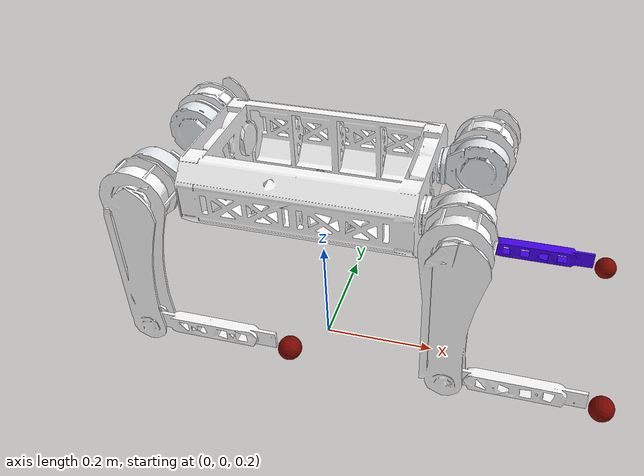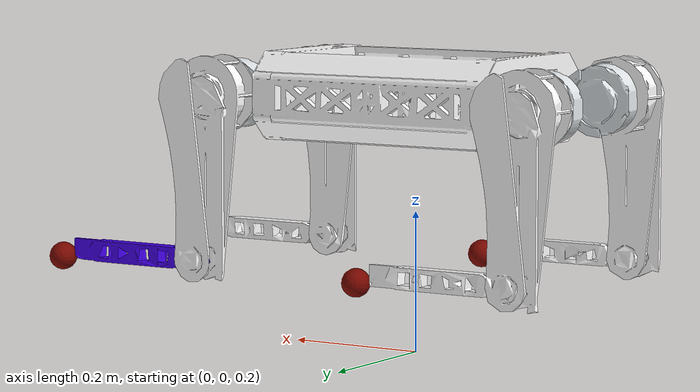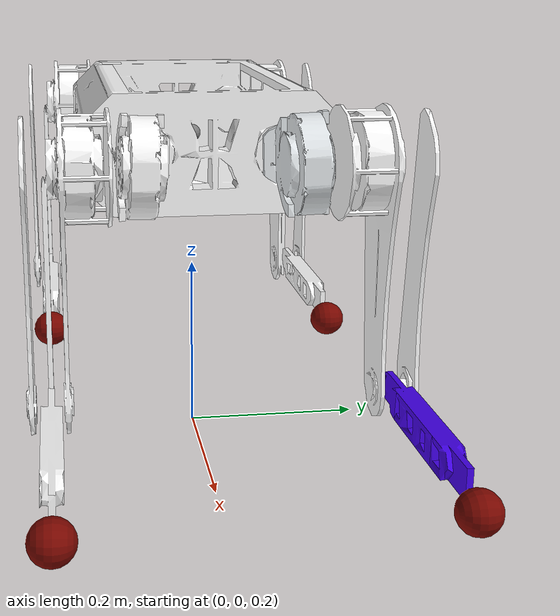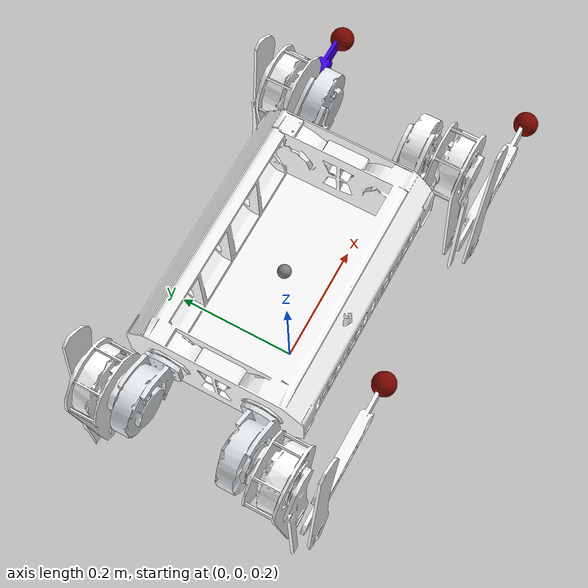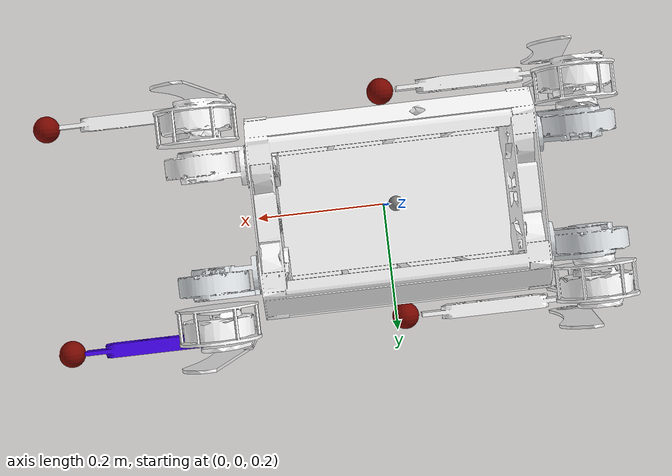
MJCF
<mujoco model="dog">
  <compiler angle="radian"/>

  <asset>
    <mesh name="body_link" file="body_link.stl"/>
    <mesh name="lf_link1" file="lf_link1.stl"/>
    <mesh name="lf_link2" file="lf_link2.stl"/>
    <mesh name="lf_link3" file="lf_link3.stl"/>
    <mesh name="lf_link4" file="lf_link4.stl"/>
    <mesh name="rf_link1" file="rf_link1.stl"/>
    <mesh name="rf_link2" file="rf_link2.stl"/>
    <mesh name="rf_link3" file="rf_link3.stl"/>
    <mesh name="rf_link4" file="rf_link4.stl"/>
    <mesh name="lb_link1" file="lb_link1.stl"/>
    <mesh name="lb_link2" file="lb_link2.stl"/>
    <mesh name="lb_link3" file="lb_link3.stl"/>
    <mesh name="lb_link4" file="lb_link4.stl"/>
    <mesh name="rb_link1" file="rb_link1.stl"/>
    <mesh name="rb_link2" file="rb_link2.stl"/>
    <mesh name="rb_link3" file="rb_link3.stl"/>
    <mesh name="rb_link4" file="rb_link4.stl"/>
  </asset>

  <contact>
        <exclude body1="base" body2="lf_link1" />
        <exclude body1="base" body2="lf_link2" />
        <exclude body1="lf_link1" body2="lf_link2" />
        <exclude body1="lf_link2" body2="lf_link3" />
        <exclude body1="base" body2="rf_link1" />
        <exclude body1="base" body2="rf_link2" />
        <exclude body1="rf_link1" body2="rf_link2" />
        <exclude body1="rf_link2" body2="rf_link3" />
    </contact>

  <worldbody>
    <!-- Main body link with mass and inertia -->
    <body name="base" pos="0 0 0.5">
      <freejoint/>
      <inertial pos="6.3455e-05 0.0025357 0.056203" quat="0.999996 -0.000182 0.00272 -5.07e-05" mass="4.2135" diaginertia="0.011761 0.010952 0.0060638"/>
      <geom type="mesh" rgba="1 1 1 1" mesh="body_link"/>
      <site name="imu_main_site" pos="0 0 0.056203" size="0.01"/>

      <body name="lf_link1" pos="0.1916 0.069987 0.061999" quat="0.707105 0 0.707108 0">
      <inertial pos="0.000574214 0.00884611 0.0444225" quat="0.521191 0.460379 0.475622 0.538697" mass="0.305259" diaginertia="0.000294539 0.000186896 0.000135452"/>
      <joint name="lf_joint1" pos="0 0 0" axis="0 0 1" range="-3 3" actuatorfrcrange="-20 20"/>
      <geom type="mesh" rgba="0.898039 0.917647 0.929412 1" mesh="lf_link1"/>
      <body name="lf_link2" pos="-0.000957 0.029298 0.060013" quat="0.707105 -0.707108 0 0">
        <inertial pos="0.0668406 -0.00037093 0.0525635" quat="-0.0206424 0.706818 0.0207042 0.706791" mass="0.644661" diaginertia="0.00225868 0.00198331 0.000301352"/>
        <joint name="lf_joint2" pos="0 0 0" axis="0 0 1" range="-3 3" actuatorfrcrange="-20 20"/>
        <geom type="mesh" rgba="1 1 1 1" mesh="lf_link2"/>
        <body name="lf_link3" pos="0.23001 0 0.0935" quat="0.707105 0 0 -0.707108">
          <inertial pos="0.0647099 -0.0060203 0.0816978" quat="0.691885 -0.127346 -0.165799 0.691078" mass="0.198135" diaginertia="0.00437451 0.003995 0.00042604"/>
          <joint name="lf_joint3" pos="0 0 0" axis="0 0 1" range="-3 3" actuatorfrcrange="-20 20"/>
          <geom type="mesh" rgba="0.266667 0 0.933333 1" mesh="lf_link3"/>
          <geom pos="0.243132 0.012189 -0.0235007" quat="0 0 0 -1" type="sphere" rgba="0.482353 0.027451 0 1" size="0.02" friction="1.2 0.01 0.0001"/>
        </body>
      </body>
    </body>
    <body name="rf_link1" pos="0.1916 -0.070013 0.061999" quat="0.707105 0 0.707108 0">
      <inertial pos="-0.00109457 -0.00876291 0.044547" quat="0.476235 0.539457 0.520405 0.459745" mass="0.305259" diaginertia="0.000294539 0.000186896 0.000135452"/>
      <joint name="rf_joint1" pos="0 0 0" axis="0 0 1" range="-3 3" actuatorfrcrange="-20 20"/>
      <geom type="mesh" rgba="1 1 1 1" mesh="rf_link1"/>
      <body name="rf_link2" pos="-0.0010387 -0.029268 0.059987" quat="0.707105 0.707108 0 0">
        <inertial pos="0.0658456 0.000279501 0.0526643" quat="0.0208579 0.706816 -0.0207629 0.706785" mass="0.653396" diaginertia="0.00226248 0.00198515 0.000303326"/>
        <joint name="rf_joint2" pos="0 0 0" axis="0 0 1" range="-3 3" actuatorfrcrange="-20 20"/>
        <geom type="mesh" rgba="1 1 1 1" mesh="rf_link2"/>
        <body name="rf_link3" pos="0.22999 1.0169e-05 0.0935" quat="0.707105 0 0 0.707108">
          <inertial pos="0.0467607 -0.00175159 0.0815497" quat="0.676226 -0.193626 -0.19761 0.682773" mass="0.198135" diaginertia="0.00490176 0.00457448 0.000373869"/>
          <joint name="rf_joint3" pos="0 0 0" axis="0 0 1" range="-3 3" actuatorfrcrange="-20 20"/>
          <geom type="mesh" rgba="1 1 1 1" mesh="rf_link3"/>
          <geom pos="0.24313 -0.013026 -0.023046" quat="0.0179954 0.999838 0 0" type="sphere" rgba="0.482353 0.027451 0 1" size="0.02" friction="1.2 0.01 0.0001"/>
        </body>
      </body>
    </body>
    <body name="lb_link1" pos="-0.1916 0.070013 0.061999" quat="-2.59734e-06 0.707105 -2.59735e-06 -0.707108">
      <inertial pos="-0.000761616 -0.00879802 0.044547" quat="0.467448 0.52951 0.530523 0.468677" mass="0.305259" diaginertia="0.000294539 0.000186896 0.000135452"/>
      <joint name="lb_joint1" pos="0 0 0" axis="0 0 1" range="-3 3" actuatorfrcrange="-20 20"/>
      <geom type="mesh" rgba="0.898039 0.917647 0.929412 1" mesh="lb_link1"/>
      <body name="lb_link2" pos="7.0296e-05 -0.029287 0.059987" quat="0.707105 0.707108 0 0">
        <inertial pos="0.0641255 -0.000392291 0.0504984" quat="-0.0207255 0.70681 0.0206398 0.706798" mass="0.673604" diaginertia="0.00227128 0.00198992 0.000307448"/>
        <joint name="lb_joint2" pos="0 0 0" axis="0 0 1" range="-3 3" actuatorfrcrange="-20 20"/>
        <geom type="mesh" rgba="1 1 1 1" mesh="lb_link2"/>
        <body name="lb_link3" pos="0.23001 0 0.0935" quat="0.707105 0 0 -0.707108">
          <inertial pos="0.050693 -0.0103779 0.0815839" quat="0.68722 -0.151926 -0.217761 0.676186" mass="0.198135" diaginertia="0.00480061 0.00446106 0.000385922"/>
          <joint name="lb_joint3" pos="0 0 0" axis="0 0 1" range="-3 3" actuatorfrcrange="-20 20"/>
          <geom type="mesh" rgba="1 1 1 1" mesh="lb_link3"/>
          <geom pos="0.24313 0.012189 -0.023501" quat="1 0 0 0" type="sphere" rgba="0.482353 0.027451 0 1" size="0.02" friction="1.2 0.01 0.0001"/>
        </body>
      </body>
    </body>
    <body name="rb_link1" pos="-0.1916 -0.07 0.062" quat="-2.59734e-06 0.707105 -2.59735e-06 -0.707108">
      <inertial pos="0.000187256 0.00884962 0.0444224" quat="0.50925 0.449836 0.485606 0.55" mass="0.305259" diaginertia="0.000294539 0.000186896 0.000135452"/>
      <joint name="rb_joint1" pos="0 0 0" axis="0 0 1" range="-3 3" actuatorfrcrange="-20 20"/>
      <geom type="mesh" rgba="0.898039 0.917647 0.929412 1" mesh="rb_link1"/>
      <body name="rb_link2" pos="-0.0022402 0.029214 0.06" quat="0.707105 -0.707108 0 0">
        <inertial pos="0.0629593 0.000213694 0.0506213" quat="0.0208318 0.706817 -0.0207387 0.706786" mass="0.682339" diaginertia="0.00227508 0.00199134 0.000309842"/>
        <joint name="rb_joint2" pos="0 0 0" axis="0 0 1" range="-3 3" actuatorfrcrange="-20 20"/>
        <geom type="mesh" rgba="1 1 1 1" mesh="rb_link2"/>
        <body name="rb_link3" pos="0.23 0 0.0935" quat="0.707105 0 0 0.707108">
          <inertial pos="0.0525255 0.0105005 0.0817597" quat="0.677595 -0.213205 -0.14646 0.688447" mass="0.198135" diaginertia="0.00475205 0.00440702 0.000391369"/>
          <joint name="rb_joint3" pos="0 0 0" axis="0 0 1" range="-3 3" actuatorfrcrange="-20 20"/>
          <geom type="mesh" rgba="1 1 1 1" mesh="rb_link3" />
          <geom pos="0.24313 -0.012189 -0.023499" quat="1 0 0 0" type="sphere" rgba="0.482353 0.027451 0 1" size="0.02" friction="1.2 0.01 0.0001"/>
        </body>
      </body>
    </body>
    </body>
  </worldbody>

  <actuator>
        <!-- Left Front -->
        <motor name="lf_motor1" joint="lf_joint1" gear="1" ctrllimited="true" ctrlrange="-20 20" />
        <motor name="lf_motor2" joint="lf_joint2" gear="1" ctrllimited="true" ctrlrange="-20 20" />
        <motor name="lf_motor3" joint="lf_joint3" gear="1" ctrllimited="true" ctrlrange="-20 20" />

        <!-- Right Front -->
        <motor name="rf_motor1" joint="rf_joint1" gear="1" ctrllimited="true" ctrlrange="-20 20" />
        <motor name="rf_motor2" joint="rf_joint2" gear="1" ctrllimited="true" ctrlrange="-20 20" />
        <motor name="rf_motor3" joint="rf_joint3" gear="1" ctrllimited="true" ctrlrange="-20 20" />

        <!-- Left Back -->
        <motor name="lb_motor1" joint="lb_joint1" gear="1" ctrllimited="true" ctrlrange="-20 20" />
        <motor name="lb_motor2" joint="lb_joint2" gear="1" ctrllimited="true" ctrlrange="-20 20" />
        <motor name="lb_motor3" joint="lb_joint3" gear="1" ctrllimited="true" ctrlrange="-20 20" />

        <!-- Right Back -->
        <motor name="rb_motor1" joint="rb_joint1" gear="1" ctrllimited="true" ctrlrange="-20 20" />
        <motor name="rb_motor2" joint="rb_joint2" gear="1" ctrllimited="true" ctrlrange="-20 20" />
        <motor name="rb_motor3" joint="rb_joint3" gear="1" ctrllimited="true" ctrlrange="-20 20" />
    </actuator>

    <sensor>
        <!-- actuator position -->
        <actuatorpos name="lf_motor1_p" actuator="lf_motor1" />
        <actuatorpos name="lf_motor2_p" actuator="lf_motor2" />
        <actuatorpos name="lf_motor3_p" actuator="lf_motor3" />

        <actuatorpos name="rf_motor1_p" actuator="rf_motor1" />
        <actuatorpos name="rf_motor2_p" actuator="rf_motor2" />
        <actuatorpos name="rf_motor3_p" actuator="rf_motor3" />

        <actuatorpos name="lb_motor1_p" actuator="lb_motor1" />
        <actuatorpos name="lb_motor2_p" actuator="lb_motor2" />
        <actuatorpos name="lb_motor3_p" actuator="lb_motor3" />

        <actuatorpos name="rb_motor1_p" actuator="rb_motor1" />
        <actuatorpos name="rb_motor2_p" actuator="rb_motor2" />
        <actuatorpos name="rb_motor3_p" actuator="rb_motor3" />

        <!-- actuator velocity -->
        <actuatorvel name="lf_motor1_v" actuator="lf_motor1" />
        <actuatorvel name="lf_motor2_v" actuator="lf_motor2" />
        <actuatorvel name="lf_motor3_v" actuator="lf_motor3" />

        <actuatorvel name="rf_motor1_v" actuator="rf_motor1" />
        <actuatorvel name="rf_motor2_v" actuator="rf_motor2" />
        <actuatorvel name="rf_motor3_v" actuator="rf_motor3" />

        <actuatorvel name="lb_motor1_v" actuator="lb_motor1" />
        <actuatorvel name="lb_motor2_v" actuator="lb_motor2" />
        <actuatorvel name="lb_motor3_v" actuator="lb_motor3" />

        <actuatorvel name="rb_motor1_v" actuator="rb_motor1" />
        <actuatorvel name="rb_motor2_v" actuator="rb_motor2" />
        <actuatorvel name="rb_motor3_v" actuator="rb_motor3" />

        <!-- actuator force -->
        <actuatorfrc name="lf_motor1_f" actuator="lf_motor1" noise="1e-3" />
        <actuatorfrc name="lf_motor2_f" actuator="lf_motor2" noise="1e-3" />
        <actuatorfrc name="lf_motor3_f" actuator="lf_motor3" noise="1e-3" />

        <actuatorfrc name="rf_motor1_f" actuator="rf_motor1" noise="1e-3" />
        <actuatorfrc name="rf_motor2_f" actuator="rf_motor2" noise="1e-3" />
        <actuatorfrc name="rf_motor3_f" actuator="rf_motor3" noise="1e-3" />

        <actuatorfrc name="lb_motor1_f" actuator="lb_motor1" noise="1e-3" />
        <actuatorfrc name="lb_motor2_f" actuator="lb_motor2" noise="1e-3" />
        <actuatorfrc name="lb_motor3_f" actuator="lb_motor3" noise="1e-3" />

        <actuatorfrc name="rb_motor1_f" actuator="rb_motor1" noise="1e-3" />
        <actuatorfrc name="rb_motor2_f" actuator="rb_motor2" noise="1e-3" />
        <actuatorfrc name="rb_motor3_f" actuator="rb_motor3" noise="1e-3" />

        <!-- IMU (imu_main): orientation + acceleration + angular velocity -->
        <accelerometer name="imu_main_accel" site="imu_main_site" />
        <gyro name="imu_main_gyro" site="imu_main_site" />
        <framequat name="imu_main_quat" objtype="site" objname="imu_main_site" />
    </sensor>

</mujoco>
